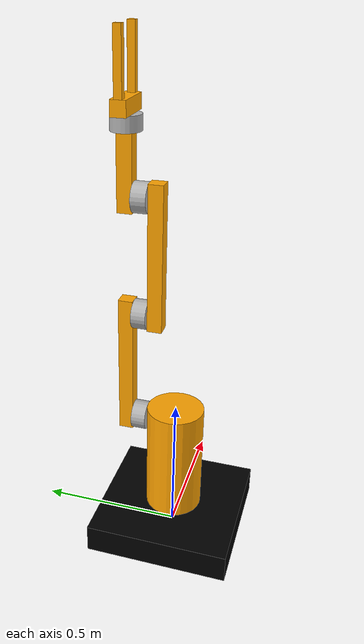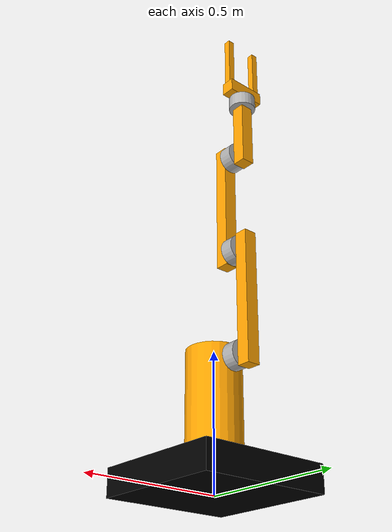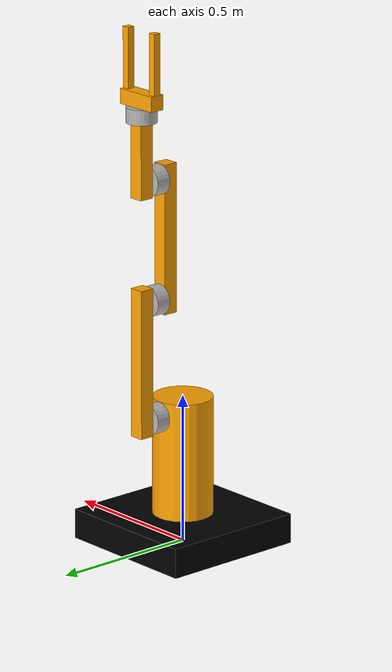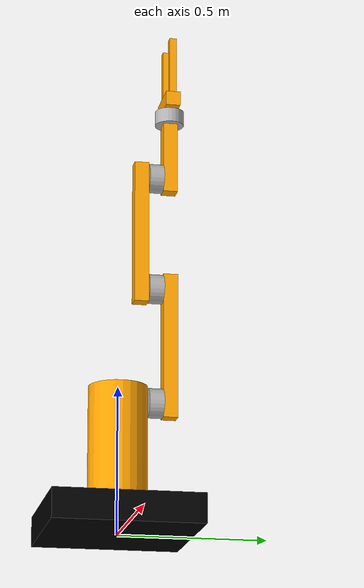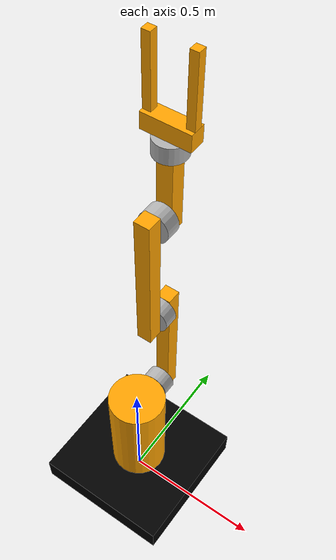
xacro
<robot name="roboarm" xmlns:xacro="http://www.ros.org/wiki/xacro">
    <!-- Xacro properties -->
    <xacro:property name="base_length" value="0.5" />
    <xacro:property name="base_height" value="0.1" />
    <xacro:property name="body_radius" value="0.1" />
    <xacro:property name="body_length" value="0.4" />
    <xacro:property name="root_radius" value="0.05" />
    <xacro:property name="root_length" value="0.05" />
    <xacro:property name="arm_width" value="0.05" />
    <xacro:property name="arm_length" value="0.5" />
    <!-- Xacro macros -->
    <xacro:macro name="root_link" params="number y_offset_sign">
        <link name="root${number}_link">
            <visual>
                <geometry>
                    <cylinder radius="${root_radius}" length="${root_length}" />
                </geometry>
                <origin xyz="0 ${root_length * y_offset_sign / 2} 0" rpy="${pi / 2} 0 0" />
                <material name="gray" />
            </visual>
        </link>
    </xacro:macro>
    <xacro:macro name="box_inertia" params="m x y z o_xyz o_rpy">
    <inertial>
        <mass value="${m}" />
        <origin xyz="${o_xyz}" rpy="${o_rpy}" />
        <inertia ixx="${(m/12) * (z*z + y*y)}" ixy="0" ixz="0"
                 iyy="${(m/12) * (x*x + z*z)}" iyz="0"
                 izz="${(m/12) * (x*x + y*y)}" />
        </inertial>
    </xacro:macro>
    <xacro:macro name="cylinder_inertia" params="m r l o_xyz o_rpy">
        <inertial>
            <mass value="${m}" />
            <origin xyz="${o_xyz}" rpy="${o_rpy}" />
            <inertia ixx="${(m/12) * (3*r*r + l*l)}" ixy="0" ixz="0"
                     iyy="${(m/12) * (3*r*r + l*l)}" iyz="0"
                     izz="${(m/2) * (r*r)}" />
        </inertial>
    </xacro:macro>
    <xacro:macro name="sphere_inertia" params="m r o_xyz o_rpy">
        <inertial>
            <mass value="${m}" />
            <origin xyz="${o_xyz}" rpy="${o_rpy}" />
            <inertia ixx="${(2/5) * m * r * r}" ixy="0" ixz="0"
                     iyy="${(2/5) * m * r * r}" iyz="0"
                     izz="${(2/5) * m * r * r}" />
        </inertial>
    </xacro:macro>
    <!-- Materials -->
    <material name="black">
        <color rgba="0 0 0 1" />
    </material>
    <material name="orange">
        <color rgba="1 0.64 0 1" />
    </material>
    <material name="gray">
        <color rgba="0.7 0.7 0.7 1" />
    </material>
    <!-- Links -->
    <link name="base_link">
        <visual>
            <geometry>
                <box size="${base_length} ${base_length} ${base_height}" />
            </geometry>
            <origin xyz="0 0 ${base_height  / 2}" rpy="0 0 0" />
            <material name="black" />
        </visual>
    </link>
    <link name="body_link">
        <visual>
            <geometry>
                <cylinder radius="${body_radius}" length="${body_length}" />
            </geometry>
            <origin xyz="0 0 ${body_length / 2}" rpy="0 0 0" />
            <material name="orange" />
        </visual>
    </link>
    <link name="root1_link">
        <visual>
            <geometry>
                <cylinder radius="${root_radius}" length="${root_length}" />
            </geometry>
            <origin xyz="0 ${root_length / 2} 0" rpy="${pi / 2} 0 0" />
            <material name="gray" />
        </visual>
    </link>
    <link name="shoulder_link">
        <visual>
            <geometry>
                <box size="${arm_width} ${arm_width} ${arm_length}" />
            </geometry>
            <origin xyz="0 ${arm_width / 2} ${(arm_length / 2) - root_radius}" rpy="0 0 0" />
            <material name="orange" />
        </visual>
    </link>
    <link name="root2_link">
        <visual>
            <geometry>
                <cylinder radius="${root_radius}" length="${root_length}" />
            </geometry>
            <origin xyz="0 ${-root_length / 2} 0" rpy="${pi / 2} 0 0" />
            <material name="gray" />
        </visual>
    </link>
    <link name="forearm_link">
        <visual>
            <geometry>
                <box size="${arm_width} ${arm_width} ${arm_length}" />
            </geometry>
            <origin xyz="0 ${-arm_width / 2} ${(arm_length / 2) - root_radius}" rpy="0 0 0" />
            <material name="orange" />
        </visual>
    </link>
    <link name="root3_link">
        <visual>
            <geometry>
                <cylinder radius="${root_radius}" length="${root_length}" />
            </geometry>
            <origin xyz="0 ${root_length / 2} 0" rpy="${pi / 2} 0 0" />
            <material name="gray" />
        </visual>
    </link>
    <link name="wrist_link">
        <visual>
            <geometry>
                <box size="${arm_width} ${arm_width} ${arm_length * 0.5}" />
            </geometry>
            <origin xyz="0 ${arm_width / 2} ${(arm_length * 0.5 / 2) - root_radius}" rpy="0 0 0" />
            <material name="orange" />
        </visual>
    </link>
    <link name="root4_link">
        <visual>
            <geometry>
                <cylinder radius="${root_radius}" length="${root_length}" />
            </geometry>
            <origin xyz="0 0 ${root_length / 2}" rpy="0 0 0" />
            <material name="gray" />
        </visual>
    </link>
    <link name="palm_link">
        <visual>
            <geometry>
                <box size="${arm_width * 3} ${arm_width} ${arm_width}" />
            </geometry>
            <origin xyz="0 0 ${arm_width / 2}" rpy="0 0 0" />
            <material name="orange" />
        </visual>
    </link>
    <link name="left_finger_link">
        <visual>
            <geometry>
                <box size="${arm_width * 0.5} ${arm_width * 0.5} ${arm_width * 4}" />
            </geometry>
            <origin xyz="0 0 ${arm_width * 4 / 2}" rpy="0 0 0" />
            <material name="orange" />
        </visual>
    </link>
    <link name="right_finger_link">
        <visual>
            <geometry>
                <box size="${arm_width * 0.5} ${arm_width * 0.5} ${arm_width * 4}" />
            </geometry>
            <origin xyz="0 0 ${arm_width * 4 / 2}" rpy="0 0 0" />
            <material name="orange" />
        </visual>
    </link>
    <!-- Joints -->
    <joint name="base_body_joint" type="revolute">
        <parent link="base_link" />
        <child link="body_link" />
        <origin xyz="0 0 ${base_height}" rpy="0 0 0" />
        <axis xyz="0 0 1" />
        <limit lower="${-pi}" upper="${pi}" velocity="100" effort="100"/>
    </joint>
    <joint name="body_root1_joint" type="revolute">
        <parent link="body_link" />
        <child link="root1_link" />
        <origin xyz="0 ${body_radius} ${body_length - root_radius}" rpy="0 0 0" />
        <axis xyz="0 1 0" />
        <limit lower="${-pi}" upper="${pi}" velocity="100" effort="100"/>
    </joint>
    <joint name="root1_shoulder_joint" type="fixed">
        <parent link="root1_link" />
        <child link="shoulder_link" />
        <origin xyz="0 ${root_length} 0" rpy="0 0 0" />
    </joint>
    <joint name="shoulder_root2_joint" type="revolute">
        <parent link="shoulder_link" />
        <child link="root2_link" />
        <origin xyz="0 0 ${arm_length - (2 * root_radius)}" rpy="0 0 0" />
        <axis xyz="0 1 0" />
        <limit lower="${-pi}" upper="${pi}" velocity="100" effort="100"/>
    </joint>
    <joint name="root2_forearm_joint" type="fixed">
        <parent link="root2_link" />
        <child link="forearm_link" />
        <origin xyz="0 ${-root_length} 0" rpy="0 0 0" />
    </joint>
    <joint name="forearm_root3_joint" type="revolute">
        <parent link="forearm_link" />
        <child link="root3_link" />
        <origin xyz="0 0 ${arm_length - (2 * root_radius)}" rpy="0 0 0" />
        <axis xyz="0 1 0" />
        <limit lower="${-pi}" upper="${pi}" velocity="100" effort="100"/>
    </joint>
    <joint name="root3_wrist_joint" type="fixed">
        <parent link="root3_link" />
        <child link="wrist_link" />
        <origin xyz="0 ${root_length} 0" rpy="0 0 0" />
    </joint>
    <joint name="wrist_root4_joint" type="revolute">
        <parent link="wrist_link" />
        <child link="root4_link" />
        <origin xyz="0 ${arm_width / 2} ${(arm_length * 0.5) - root_radius}" rpy="0 0 0" />
        <axis xyz="0 0 1" />
        <limit lower="${-pi}" upper="${pi}" velocity="100" effort="100"/>
    </joint>
    <joint name="root4_palm_joint" type="fixed">
        <parent link="root4_link" />
        <child link="palm_link" />
        <origin xyz="0 0 ${root_length}" rpy="0 0 0" />
    </joint>
    <joint name="palm_left_finger_joint" type="prismatic">
        <parent link="palm_link" />
        <child link="left_finger_link" />
        <origin xyz="${(-arm_width * 3 / 2) + (arm_width * 0.5 / 2)} 0 ${arm_width}" rpy="0 0 0" />
        <axis xyz="1 0 0" />
        <limit lower="0" upper="${(arm_width * 3 / 2) - (arm_width * 0.5)}" velocity="100" effort="100"/>
    </joint>
    <joint name="palm_right_finger_joint" type="prismatic">
        <parent link="palm_link" />
        <child link="right_finger_link" />
        <origin xyz="${(arm_width * 3 / 2) - (arm_width * 0.5 / 2)} 0 ${arm_width}" rpy="0 0 0" />
        <axis xyz="1 0 0" />
        <limit lower="${-(arm_width * 3 / 2) + (arm_width * 0.5)}" upper="0" velocity="100" effort="100"/>
    </joint>
</robot>
